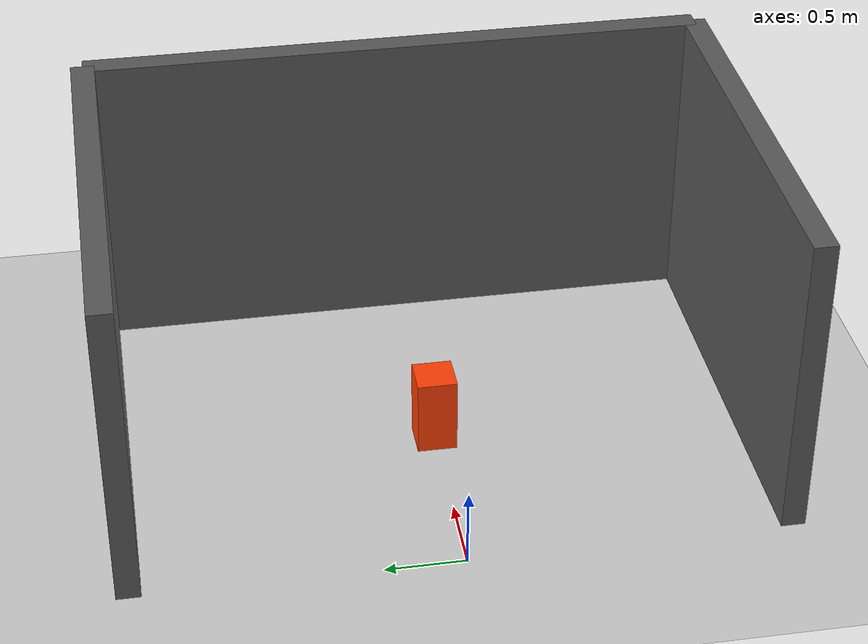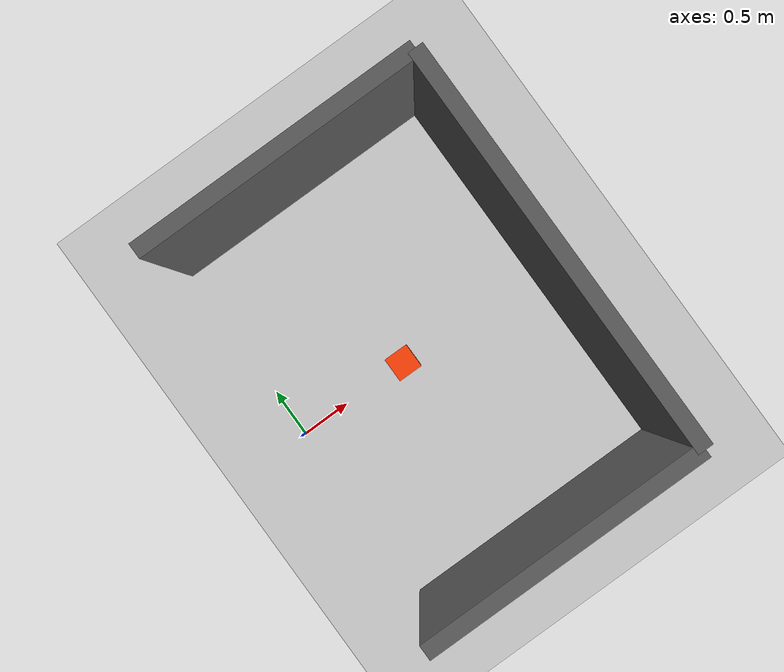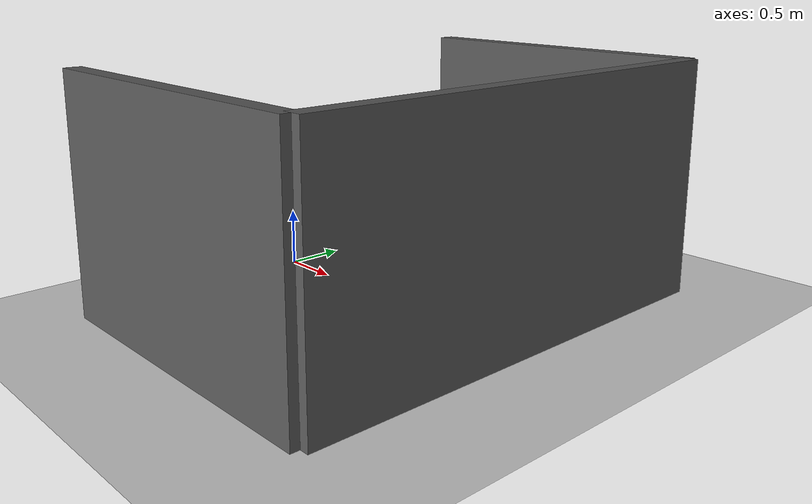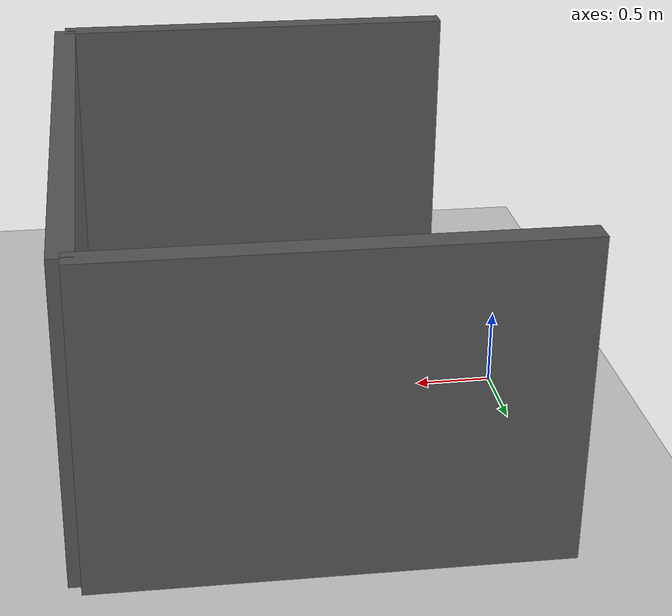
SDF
<?xml version="1.0" ?>
<sdf version="1.6">
  <world name="office_fire_detection_test_world">
    <physics name="default_physics" type="ode">
      <max_step_size>0.001</max_step_size>
      <real_time_factor>1.0</real_time_factor>
      <real_time_update_rate>1000</real_time_update_rate>
    </physics>

    <include>
      <uri>model://sun</uri>
    </include>
    <include>
      <uri>model://ground_plane</uri>
    </include>

    <scene>
      <ambient>0.15 0.15 0.18 1</ambient>
      <background>0.02 0.02 0.03 1</background>
    </scene>

    <!-- Simple walls so the camera sees a stable indoor-like background. -->
    <model name="back_wall">
      <static>true</static>
      <pose>2.8 0.0 1.0 0 0 0</pose>
      <link name="link">
        <collision name="col">
          <geometry>
            <box>
              <size>0.15 4.0 2.0</size>
            </box>
          </geometry>
        </collision>
        <visual name="vis">
          <geometry>
            <box>
              <size>0.15 4.0 2.0</size>
            </box>
          </geometry>
          <material>
            <ambient>0.35 0.35 0.35 1</ambient>
            <diffuse>0.35 0.35 0.35 1</diffuse>
          </material>
        </visual>
      </link>
    </model>

    <model name="left_wall">
      <static>true</static>
      <pose>1.4 2.0 1.0 0 0 0</pose>
      <link name="link">
        <collision name="col">
          <geometry>
            <box>
              <size>2.8 0.15 2.0</size>
            </box>
          </geometry>
        </collision>
        <visual name="vis">
          <geometry>
            <box>
              <size>2.8 0.15 2.0</size>
            </box>
          </geometry>
          <material>
            <ambient>0.35 0.35 0.35 1</ambient>
            <diffuse>0.35 0.35 0.35 1</diffuse>
          </material>
        </visual>
      </link>
    </model>

    <model name="right_wall">
      <static>true</static>
      <pose>1.4 -2.0 1.0 0 0 0</pose>
      <link name="link">
        <collision name="col">
          <geometry>
            <box>
              <size>2.8 0.15 2.0</size>
            </box>
          </geometry>
        </collision>
        <visual name="vis">
          <geometry>
            <box>
              <size>2.8 0.15 2.0</size>
            </box>
          </geometry>
          <material>
            <ambient>0.35 0.35 0.35 1</ambient>
            <diffuse>0.35 0.35 0.35 1</diffuse>
          </material>
        </visual>
      </link>
    </model>

    <!-- Fire target placed directly in front of the default spawn pose. -->
    <model name="fire_target">
      <static>true</static>
      <pose>1.2 0.0 0.25 0 0 0</pose>
      <link name="link">
        <collision name="col">
          <geometry>
            <box>
              <size>0.25 0.25 0.5</size>
            </box>
          </geometry>
        </collision>
        <visual name="vis">
          <geometry>
            <box>
              <size>0.25 0.25 0.5</size>
            </box>
          </geometry>
          <material>
            <ambient>1.0 0.20 0.02 1</ambient>
            <diffuse>1.0 0.25 0.02 1</diffuse>
            <emissive>1.0 0.15 0.0 1</emissive>
          </material>
        </visual>
      </link>
    </model>

    <light name="fire_light" type="point">
      <pose>1.2 0.0 1.0 0 0 0</pose>
      <diffuse>1 0.25 0.02 1</diffuse>
      <specular>1 0.2 0.02 1</specular>
      <attenuation>
        <range>1.5</range>
        <constant>0.5</constant>
        <linear>0.1</linear>
        <quadratic>0.01</quadratic>
      </attenuation>
      <cast_shadows>true</cast_shadows>
    </light>
  </world>
</sdf>
